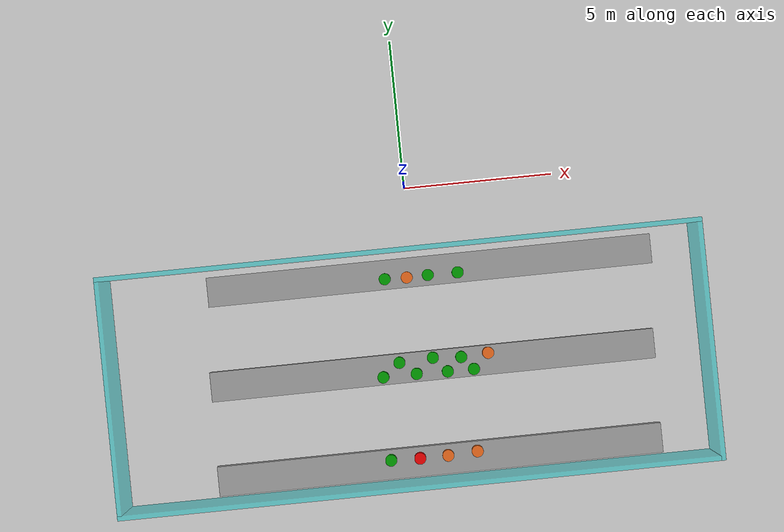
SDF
<sdf version="1.7">
 <world name="default">
  <model name="ground_plane">
   <static>1</static>
   <link name="link">
    <collision name="collision">
     <geometry><plane><normal>0 0 1</normal><size>100 100</size></plane></geometry>
     <surface>
      <contact><collide_bitmask>65535</collide_bitmask></contact>
      <friction><ode><mu>100</mu><mu2>50</mu2></ode></friction>
     </surface>
    </collision>
    <visual name="visual">
     <cast_shadows>0</cast_shadows>
     <geometry><plane><normal>0 0 1</normal><size>100 100</size></plane></geometry>
     <material>
      <script><uri>file://media/materials/scripts/gazebo.material</uri><name>Gazebo/Grey</name></script>
     </material>
    </visual>
   </link>
  </model>
  <model name="Test_Bench">
   <link name="link_1">
    <inertial>
     <mass>6.47546</mass>
     <inertia><ixx>0.639529</ixx><ixy>0</ixy><ixz>0</ixz><iyy>122.309</iyy><iyz>0</iyz><izz>122.749</izz></inertia>
    </inertial>
    <pose>-0 4e-06 0 0 -0 0</pose>
    <visual name="visual">
     <geometry><box><size>15.049 1 0.430283</size></box></geometry>
     <material>
      <lighting>1</lighting>
      <script><uri>file://media/materials/scripts/gazebo.material</uri><name>Gazebo/Grey</name></script>
      <shader type="pixel"/>
     </material>
    </visual>
    <collision name="collision">
     <geometry><box><size>15.049 1 0.430283</size></box></geometry>
     <surface>
      <friction>
       <ode><mu>1</mu><mu2>1</mu2><fdir1>0 0 0</fdir1><slip1>0</slip1><slip2>0</slip2></ode>
       <torsional>
        <coefficient>1</coefficient>
        <patch_radius>0</patch_radius>
        <surface_radius>0</surface_radius>
        <use_patch_radius>1</use_patch_radius>
        <ode><slip>0</slip></ode>
       </torsional>
      </friction>
      <bounce><restitution_coefficient>0</restitution_coefficient><threshold>1e+06</threshold></bounce>
      <contact>
       <collide_without_contact>0</collide_without_contact>
       <collide_without_contact_bitmask>1</collide_without_contact_bitmask>
       <collide_bitmask>1</collide_bitmask>
       <ode>
        <soft_cfm>0</soft_cfm>
        <soft_erp>0.2</soft_erp>
        <kp>1e+13</kp>
        <kd>1</kd>
        <max_vel>0.01</max_vel>
        <min_depth>0</min_depth>
       </ode>
       <bullet>
        <split_impulse>1</split_impulse>
        <split_impulse_penetration_threshold>-0.01</split_impulse_penetration_threshold>
        <soft_cfm>0</soft_cfm>
        <soft_erp>0.2</soft_erp>
        <kp>1e+13</kp>
        <kd>1</kd>
       </bullet>
      </contact>
     </surface>
    </collision>
   </link>
   <static>0</static>
   <pose>0.548935 -2.85971 0.205889 -0.000489 3.2e-05 1.1e-05</pose>
  </model>
  <model name="Test_Bench_clone">
   <link name="link_1">
    <inertial>
     <mass>6.47546</mass>
     <inertia><ixx>0.639529</ixx><ixy>0</ixy><ixz>0</ixz><iyy>122.309</iyy><iyz>0</iyz><izz>122.749</izz></inertia>
    </inertial>
    <pose>-0 4e-06 0 0 -0 0</pose>
    <visual name="visual">
     <geometry><box><size>15.049 1 0.430283</size></box></geometry>
     <material>
      <lighting>1</lighting>
      <script><uri>file://media/materials/scripts/gazebo.material</uri><name>Gazebo/Grey</name></script>
      <shader type="pixel"/>
     </material>
    </visual>
    <collision name="collision">
     <geometry><box><size>15.049 1 0.430283</size></box></geometry>
     <surface>
      <friction>
       <ode><mu>1</mu><mu2>1</mu2><fdir1>0 0 0</fdir1><slip1>0</slip1><slip2>0</slip2></ode>
       <torsional>
        <coefficient>1</coefficient>
        <patch_radius>0</patch_radius>
        <surface_radius>0</surface_radius>
        <use_patch_radius>1</use_patch_radius>
        <ode><slip>0</slip></ode>
       </torsional>
      </friction>
      <bounce><restitution_coefficient>0</restitution_coefficient><threshold>1e+06</threshold></bounce>
      <contact>
       <collide_without_contact>0</collide_without_contact>
       <collide_without_contact_bitmask>1</collide_without_contact_bitmask>
       <collide_bitmask>1</collide_bitmask>
       <ode>
        <soft_cfm>0</soft_cfm>
        <soft_erp>0.2</soft_erp>
        <kp>1e+13</kp>
        <kd>1</kd>
        <max_vel>0.01</max_vel>
        <min_depth>0</min_depth>
       </ode>
       <bullet>
        <split_impulse>1</split_impulse>
        <split_impulse_penetration_threshold>-0.01</split_impulse_penetration_threshold>
        <soft_cfm>0</soft_cfm>
        <soft_erp>0.2</soft_erp>
        <kp>1e+13</kp>
        <kd>1</kd>
       </bullet>
      </contact>
     </surface>
    </collision>
   </link>
   <static>0</static>
   <pose>0.345725 -6.0582 0.210803 6.6e-05 -8e-06 2e-06</pose>
  </model>
  <model name="Test_Bench_clone_0">
   <link name="link_1">
    <inertial>
     <mass>6.47546</mass>
     <inertia><ixx>0.639529</ixx><ixy>0</ixy><ixz>0</ixz><iyy>122.309</iyy><iyz>0</iyz><izz>122.749</izz></inertia>
    </inertial>
    <pose>-0 4e-06 0 0 -0 0</pose>
    <visual name="visual">
     <geometry><box><size>15.049 1 0.430283</size></box></geometry>
     <material>
      <lighting>1</lighting>
      <script><uri>file://media/materials/scripts/gazebo.material</uri><name>Gazebo/Grey</name></script>
      <shader type="pixel"/>
     </material>
    </visual>
    <collision name="collision">
     <geometry><box><size>15.049 1 0.430283</size></box></geometry>
     <surface>
      <friction>
       <ode><mu>1</mu><mu2>1</mu2><fdir1>0 0 0</fdir1><slip1>0</slip1><slip2>0</slip2></ode>
       <torsional>
        <coefficient>1</coefficient>
        <patch_radius>0</patch_radius>
        <surface_radius>0</surface_radius>
        <use_patch_radius>1</use_patch_radius>
        <ode><slip>0</slip></ode>
       </torsional>
      </friction>
      <bounce><restitution_coefficient>0</restitution_coefficient><threshold>1e+06</threshold></bounce>
      <contact>
       <collide_without_contact>0</collide_without_contact>
       <collide_without_contact_bitmask>1</collide_without_contact_bitmask>
       <collide_bitmask>1</collide_bitmask>
       <ode>
        <soft_cfm>0</soft_cfm>
        <soft_erp>0.2</soft_erp>
        <kp>1e+13</kp>
        <kd>1</kd>
        <max_vel>0.01</max_vel>
        <min_depth>0</min_depth>
       </ode>
       <bullet>
        <split_impulse>1</split_impulse>
        <split_impulse_penetration_threshold>-0.01</split_impulse_penetration_threshold>
        <soft_cfm>0</soft_cfm>
        <soft_erp>0.2</soft_erp>
        <kp>1e+13</kp>
        <kd>1</kd>
       </bullet>
      </contact>
     </surface>
    </collision>
   </link>
   <static>0</static>
   <pose>0.286602 -9.2541 0.215141 0 -0 0</pose>
  </model>
  <model name="Test_Building2">
   <link name="Wall_3">
    <pose>0 2.93093 0 0 -0 0</pose>
    <inertial>
     <mass>1</mass>
     <inertia><ixx>1</ixx><ixy>0</ixy><ixz>0</ixz><iyy>1</iyy><iyz>0</iyz><izz>1</izz></inertia>
    </inertial>
    <visual name="Wall_3_Visual">
     <pose>0 0 1.25 0 -0 0</pose>
     <geometry><box><size>20 0.15 2.5</size></box></geometry>
     <material>
      <script><uri>file://media/materials/scripts/gazebo.material</uri><name>Gazebo/Grey</name></script>
      <ambient>0 0.808 0.816 1</ambient>
      <shader type="pixel"><normal_map>__default__</normal_map></shader>
      <diffuse>0.7 0.7 0.7 1</diffuse>
      <specular>0.01 0.01 0.01 1</specular>
      <emissive>0 0 0 1</emissive>
     </material>
     <meta><layer>0</layer></meta>
     <transparency>0.5</transparency>
    </visual>
    <collision name="Wall_3_Collision">
     <pose>0 0 1.25 0 -0 0</pose>
     <geometry><box><size>20 0.15 2.5</size></box></geometry>
     <surface>
      <friction>
       <ode><mu>1</mu><mu2>1</mu2><fdir1>0 0 0</fdir1><slip1>0</slip1><slip2>0</slip2></ode>
       <torsional>
        <coefficient>1</coefficient>
        <patch_radius>0</patch_radius>
        <surface_radius>0</surface_radius>
        <use_patch_radius>1</use_patch_radius>
        <ode><slip>0</slip></ode>
       </torsional>
      </friction>
      <bounce><restitution_coefficient>0</restitution_coefficient><threshold>1e+06</threshold></bounce>
      <contact>
       <collide_without_contact>0</collide_without_contact>
       <collide_without_contact_bitmask>1</collide_without_contact_bitmask>
       <collide_bitmask>1</collide_bitmask>
       <ode>
        <soft_cfm>0</soft_cfm>
        <soft_erp>0.2</soft_erp>
        <kp>1e+13</kp>
        <kd>1</kd>
        <max_vel>0.01</max_vel>
        <min_depth>0</min_depth>
       </ode>
       <bullet>
        <split_impulse>1</split_impulse>
        <split_impulse_penetration_threshold>-0.01</split_impulse_penetration_threshold>
        <soft_cfm>0</soft_cfm>
        <soft_erp>0.2</soft_erp>
        <kp>1e+13</kp>
        <kd>1</kd>
       </bullet>
      </contact>
     </surface>
    </collision>
   </link>
   <link name="Wall_4">
    <pose>9.925 -0.994068 0 0 0 -1.5708</pose>
    <inertial>
     <mass>1</mass>
     <inertia><ixx>1</ixx><ixy>0</ixy><ixz>0</ixz><iyy>1</iyy><iyz>0</iyz><izz>1</izz></inertia>
    </inertial>
    <visual name="Wall_4_Visual">
     <pose>0 0 1.25 0 -0 0</pose>
     <geometry><box><size>8 0.15 2.5</size></box></geometry>
     <material>
      <script><uri>file://media/materials/scripts/gazebo.material</uri><name>Gazebo/Grey</name></script>
      <ambient>0 0.808 0.816 1</ambient>
      <shader type="pixel"><normal_map>__default__</normal_map></shader>
      <diffuse>0.7 0.7 0.7 1</diffuse>
      <specular>0.01 0.01 0.01 1</specular>
      <emissive>0 0 0 1</emissive>
     </material>
     <meta><layer>0</layer></meta>
     <transparency>0.5</transparency>
    </visual>
    <collision name="Wall_4_Collision">
     <pose>0 0 1.25 0 -0 0</pose>
     <geometry><box><size>8 0.15 2.5</size></box></geometry>
     <surface>
      <friction>
       <ode><mu>1</mu><mu2>1</mu2><fdir1>0 0 0</fdir1><slip1>0</slip1><slip2>0</slip2></ode>
       <torsional>
        <coefficient>1</coefficient>
        <patch_radius>0</patch_radius>
        <surface_radius>0</surface_radius>
        <use_patch_radius>1</use_patch_radius>
        <ode><slip>0</slip></ode>
       </torsional>
      </friction>
      <bounce><restitution_coefficient>0</restitution_coefficient><threshold>1e+06</threshold></bounce>
      <contact>
       <collide_without_contact>0</collide_without_contact>
       <collide_without_contact_bitmask>1</collide_without_contact_bitmask>
       <collide_bitmask>1</collide_bitmask>
       <ode>
        <soft_cfm>0</soft_cfm>
        <soft_erp>0.2</soft_erp>
        <kp>1e+13</kp>
        <kd>1</kd>
        <max_vel>0.01</max_vel>
        <min_depth>0</min_depth>
       </ode>
       <bullet>
        <split_impulse>1</split_impulse>
        <split_impulse_penetration_threshold>-0.01</split_impulse_penetration_threshold>
        <soft_cfm>0</soft_cfm>
        <soft_erp>0.2</soft_erp>
        <kp>1e+13</kp>
        <kd>1</kd>
       </bullet>
      </contact>
     </surface>
    </collision>
   </link>
   <link name="Wall_5">
    <pose>0 -4.91907 0 0 -0 3.14159</pose>
    <inertial>
     <mass>1</mass>
     <inertia><ixx>1</ixx><ixy>0</ixy><ixz>0</ixz><iyy>1</iyy><iyz>0</iyz><izz>1</izz></inertia>
    </inertial>
    <visual name="Wall_5_Visual">
     <pose>0 0 1.25 0 -0 0</pose>
     <geometry><box><size>20 0.15 2.5</size></box></geometry>
     <material>
      <script><uri>file://media/materials/scripts/gazebo.material</uri><name>Gazebo/Grey</name></script>
      <ambient>0 0.808 0.816 1</ambient>
      <shader type="pixel"><normal_map>__default__</normal_map></shader>
      <diffuse>0.7 0.7 0.7 1</diffuse>
      <specular>0.01 0.01 0.01 1</specular>
      <emissive>0 0 0 1</emissive>
     </material>
     <meta><layer>0</layer></meta>
     <transparency>0.5</transparency>
    </visual>
    <collision name="Wall_5_Collision">
     <pose>0 0 1.25 0 -0 0</pose>
     <geometry><box><size>20 0.15 2.5</size></box></geometry>
     <surface>
      <friction>
       <ode><mu>1</mu><mu2>1</mu2><fdir1>0 0 0</fdir1><slip1>0</slip1><slip2>0</slip2></ode>
       <torsional>
        <coefficient>1</coefficient>
        <patch_radius>0</patch_radius>
        <surface_radius>0</surface_radius>
        <use_patch_radius>1</use_patch_radius>
        <ode><slip>0</slip></ode>
       </torsional>
      </friction>
      <bounce><restitution_coefficient>0</restitution_coefficient><threshold>1e+06</threshold></bounce>
      <contact>
       <collide_without_contact>0</collide_without_contact>
       <collide_without_contact_bitmask>1</collide_without_contact_bitmask>
       <collide_bitmask>1</collide_bitmask>
       <ode>
        <soft_cfm>0</soft_cfm>
        <soft_erp>0.2</soft_erp>
        <kp>1e+13</kp>
        <kd>1</kd>
        <max_vel>0.01</max_vel>
        <min_depth>0</min_depth>
       </ode>
       <bullet>
        <split_impulse>1</split_impulse>
        <split_impulse_penetration_threshold>-0.01</split_impulse_penetration_threshold>
        <soft_cfm>0</soft_cfm>
        <soft_erp>0.2</soft_erp>
        <kp>1e+13</kp>
        <kd>1</kd>
       </bullet>
      </contact>
     </surface>
    </collision>
   </link>
   <link name="Wall_6">
    <pose>-9.925 -0.994068 0 0 -0 1.5708</pose>
    <inertial>
     <mass>1</mass>
     <inertia><ixx>1</ixx><ixy>0</ixy><ixz>0</ixz><iyy>1</iyy><iyz>0</iyz><izz>1</izz></inertia>
    </inertial>
    <visual name="Wall_6_Visual">
     <pose>0 0 1.25 0 -0 0</pose>
     <geometry><box><size>8 0.15 2.5</size></box></geometry>
     <material>
      <script><uri>file://media/materials/scripts/gazebo.material</uri><name>Gazebo/Grey</name></script>
      <ambient>0 0.808 0.816 1</ambient>
      <shader type="pixel"><normal_map>__default__</normal_map></shader>
      <diffuse>0.7 0.7 0.7 1</diffuse>
      <specular>0.01 0.01 0.01 1</specular>
      <emissive>0 0 0 1</emissive>
     </material>
     <meta><layer>0</layer></meta>
     <transparency>0.5</transparency>
    </visual>
    <collision name="Wall_6_Collision">
     <pose>0 0 1.25 0 -0 0</pose>
     <geometry><box><size>8 0.15 2.5</size></box></geometry>
     <surface>
      <friction>
       <ode><mu>1</mu><mu2>1</mu2><fdir1>0 0 0</fdir1><slip1>0</slip1><slip2>0</slip2></ode>
       <torsional>
        <coefficient>1</coefficient>
        <patch_radius>0</patch_radius>
        <surface_radius>0</surface_radius>
        <use_patch_radius>1</use_patch_radius>
        <ode><slip>0</slip></ode>
       </torsional>
      </friction>
      <bounce><restitution_coefficient>0</restitution_coefficient><threshold>1e+06</threshold></bounce>
      <contact>
       <collide_without_contact>0</collide_without_contact>
       <collide_without_contact_bitmask>1</collide_without_contact_bitmask>
       <collide_bitmask>1</collide_bitmask>
       <ode>
        <soft_cfm>0</soft_cfm>
        <soft_erp>0.2</soft_erp>
        <kp>1e+13</kp>
        <kd>1</kd>
        <max_vel>0.01</max_vel>
        <min_depth>0</min_depth>
       </ode>
       <bullet>
        <split_impulse>1</split_impulse>
        <split_impulse_penetration_threshold>-0.01</split_impulse_penetration_threshold>
        <soft_cfm>0</soft_cfm>
        <soft_erp>0.2</soft_erp>
        <kp>1e+13</kp>
        <kd>1</kd>
       </bullet>
      </contact>
     </surface>
    </collision>
   </link>
   <static>1</static>
   <pose>-0.420117 -4.99407 0 0 -0 0</pose>
  </model>
  <model name="Test_pot_green_clone_3">
   <link name="link_0">
    <inertial>
     <mass>0.044841</mass>
     <inertia>
      <ixx>0.00074807</ixx>
      <ixy>0</ixy>
      <ixz>0</ixz>
      <iyy>0.00074807</iyy>
      <iyz>0</iyz>
      <izz>0.00086495</izz>
     </inertia>
    </inertial>
    <pose>3e-06 1e-06 0 0 -0 0</pose>
    <visual name="visual">
     <geometry><cylinder><radius>0.196415</radius><length>0.290612</length></cylinder></geometry>
     <material>
      <lighting>1</lighting>
      <script><uri>file://media/materials/scripts/gazebo.material</uri><name>Gazebo/Grey</name></script>
      <shader type="pixel"><normal_map>__default__</normal_map></shader>
      <diffuse>0 0.6 0 0</diffuse>
      <ambient>0.3 0.3 0.3 1</ambient>
      <specular>0.01 0.01 0.01 1</specular>
      <emissive>0 0 0 1</emissive>
     </material>
    </visual>
    <collision name="collision">
     <geometry><cylinder><radius>0.196415</radius><length>0.290612</length></cylinder></geometry>
     <surface>
      <friction>
       <ode><mu>1</mu><mu2>1</mu2><fdir1>0 0 0</fdir1><slip1>0</slip1><slip2>0</slip2></ode>
       <torsional>
        <coefficient>1</coefficient>
        <patch_radius>0</patch_radius>
        <surface_radius>0</surface_radius>
        <use_patch_radius>1</use_patch_radius>
        <ode><slip>0</slip></ode>
       </torsional>
      </friction>
      <bounce><restitution_coefficient>0</restitution_coefficient><threshold>1e+06</threshold></bounce>
      <contact>
       <collide_without_contact>0</collide_without_contact>
       <collide_without_contact_bitmask>1</collide_without_contact_bitmask>
       <collide_bitmask>1</collide_bitmask>
       <ode>
        <soft_cfm>0</soft_cfm>
        <soft_erp>0.2</soft_erp>
        <kp>1e+13</kp>
        <kd>1</kd>
        <max_vel>0.01</max_vel>
        <min_depth>0</min_depth>
       </ode>
       <bullet>
        <split_impulse>1</split_impulse>
        <split_impulse_penetration_threshold>-0.01</split_impulse_penetration_threshold>
        <soft_cfm>0</soft_cfm>
        <soft_erp>0.2</soft_erp>
        <kp>1e+13</kp>
        <kd>1</kd>
       </bullet>
      </contact>
     </surface>
    </collision>
   </link>
   <static>0</static>
   <pose>-0.965564 -3.00465 0.575588 1e-06 6e-06 -0.000489</pose>
  </model>
  <model name="Test_pot_green_clone_12">
   <link name="link_0">
    <inertial>
     <mass>0.044841</mass>
     <inertia>
      <ixx>0.00074807</ixx>
      <ixy>0</ixy>
      <ixz>0</ixz>
      <iyy>0.00074807</iyy>
      <iyz>0</iyz>
      <izz>0.00086495</izz>
     </inertia>
    </inertial>
    <pose>3e-06 1e-06 0 0 -0 0</pose>
    <visual name="visual">
     <geometry><cylinder><radius>0.196415</radius><length>0.290612</length></cylinder></geometry>
     <material>
      <lighting>1</lighting>
      <script><uri>file://media/materials/scripts/gazebo.material</uri><name>Gazebo/Grey</name></script>
      <shader type="pixel"><normal_map>__default__</normal_map></shader>
      <diffuse>0 0.6 0 0</diffuse>
      <ambient>0.3 0.3 0.3 1</ambient>
      <specular>0.01 0.01 0.01 1</specular>
      <emissive>0 0 0 1</emissive>
     </material>
    </visual>
    <collision name="collision">
     <geometry><cylinder><radius>0.196415</radius><length>0.290612</length></cylinder></geometry>
     <surface>
      <friction>
       <ode><mu>1</mu><mu2>1</mu2><fdir1>0 0 0</fdir1><slip1>0</slip1><slip2>0</slip2></ode>
       <torsional>
        <coefficient>1</coefficient>
        <patch_radius>0</patch_radius>
        <surface_radius>0</surface_radius>
        <use_patch_radius>1</use_patch_radius>
        <ode><slip>0</slip></ode>
       </torsional>
      </friction>
      <bounce><restitution_coefficient>0</restitution_coefficient><threshold>1e+06</threshold></bounce>
      <contact>
       <collide_without_contact>0</collide_without_contact>
       <collide_without_contact_bitmask>1</collide_without_contact_bitmask>
       <collide_bitmask>1</collide_bitmask>
       <ode>
        <soft_cfm>0</soft_cfm>
        <soft_erp>0.2</soft_erp>
        <kp>1e+13</kp>
        <kd>1</kd>
        <max_vel>0.01</max_vel>
        <min_depth>0</min_depth>
       </ode>
       <bullet>
        <split_impulse>1</split_impulse>
        <split_impulse_penetration_threshold>-0.01</split_impulse_penetration_threshold>
        <soft_cfm>0</soft_cfm>
        <soft_erp>0.2</soft_erp>
        <kp>1e+13</kp>
        <kd>1</kd>
       </bullet>
      </contact>
     </surface>
    </collision>
   </link>
   <static>0</static>
   <pose>-1.33861 -6.28993 0.575588 1e-06 6e-06 -0.000489</pose>
  </model>
  <model name="Test_pot_green_clone_14">
   <link name="link_0">
    <inertial>
     <mass>0.044841</mass>
     <inertia>
      <ixx>0.00074807</ixx>
      <ixy>0</ixy>
      <ixz>0</ixz>
      <iyy>0.00074807</iyy>
      <iyz>0</iyz>
      <izz>0.00086495</izz>
     </inertia>
    </inertial>
    <pose>3e-06 1e-06 0 0 -0 0</pose>
    <visual name="visual">
     <geometry><cylinder><radius>0.196415</radius><length>0.290612</length></cylinder></geometry>
     <material>
      <lighting>1</lighting>
      <script><uri>file://media/materials/scripts/gazebo.material</uri><name>Gazebo/Grey</name></script>
      <shader type="pixel"><normal_map>__default__</normal_map></shader>
      <diffuse>0 0.6 0 0</diffuse>
      <ambient>0.3 0.3 0.3 1</ambient>
      <specular>0.01 0.01 0.01 1</specular>
      <emissive>0 0 0 1</emissive>
     </material>
    </visual>
    <collision name="collision">
     <geometry><cylinder><radius>0.196415</radius><length>0.290612</length></cylinder></geometry>
     <surface>
      <friction>
       <ode><mu>1</mu><mu2>1</mu2><fdir1>0 0 0</fdir1><slip1>0</slip1><slip2>0</slip2></ode>
       <torsional>
        <coefficient>1</coefficient>
        <patch_radius>0</patch_radius>
        <surface_radius>0</surface_radius>
        <use_patch_radius>1</use_patch_radius>
        <ode><slip>0</slip></ode>
       </torsional>
      </friction>
      <bounce><restitution_coefficient>0</restitution_coefficient><threshold>1e+06</threshold></bounce>
      <contact>
       <collide_without_contact>0</collide_without_contact>
       <collide_without_contact_bitmask>1</collide_without_contact_bitmask>
       <collide_bitmask>1</collide_bitmask>
       <ode>
        <soft_cfm>0</soft_cfm>
        <soft_erp>0.2</soft_erp>
        <kp>1e+13</kp>
        <kd>1</kd>
        <max_vel>0.01</max_vel>
        <min_depth>0</min_depth>
       </ode>
       <bullet>
        <split_impulse>1</split_impulse>
        <split_impulse_penetration_threshold>-0.01</split_impulse_penetration_threshold>
        <soft_cfm>0</soft_cfm>
        <soft_erp>0.2</soft_erp>
        <kp>1e+13</kp>
        <kd>1</kd>
       </bullet>
      </contact>
     </surface>
    </collision>
   </link>
   <static>0</static>
   <pose>-0.210467 -6.28115 0.575588 1e-06 6e-06 -0.000489</pose>
  </model>
  <model name="Test_pot_green_clone_15">
   <link name="link_0">
    <inertial>
     <mass>0.044841</mass>
     <inertia>
      <ixx>0.00074807</ixx>
      <ixy>0</ixy>
      <ixz>0</ixz>
      <iyy>0.00074807</iyy>
      <iyz>0</iyz>
      <izz>0.00086495</izz>
     </inertia>
    </inertial>
    <pose>3e-06 1e-06 0 0 -0 0</pose>
    <visual name="visual">
     <geometry><cylinder><radius>0.196415</radius><length>0.290612</length></cylinder></geometry>
     <material>
      <lighting>1</lighting>
      <script><uri>file://media/materials/scripts/gazebo.material</uri><name>Gazebo/Grey</name></script>
      <shader type="pixel"><normal_map>__default__</normal_map></shader>
      <diffuse>0 0.6 0 0</diffuse>
      <ambient>0.3 0.3 0.3 1</ambient>
      <specular>0.01 0.01 0.01 1</specular>
      <emissive>0 0 0 1</emissive>
     </material>
    </visual>
    <collision name="collision">
     <geometry><cylinder><radius>0.196415</radius><length>0.290612</length></cylinder></geometry>
     <surface>
      <friction>
       <ode><mu>1</mu><mu2>1</mu2><fdir1>0 0 0</fdir1><slip1>0</slip1><slip2>0</slip2></ode>
       <torsional>
        <coefficient>1</coefficient>
        <patch_radius>0</patch_radius>
        <surface_radius>0</surface_radius>
        <use_patch_radius>1</use_patch_radius>
        <ode><slip>0</slip></ode>
       </torsional>
      </friction>
      <bounce><restitution_coefficient>0</restitution_coefficient><threshold>1e+06</threshold></bounce>
      <contact>
       <collide_without_contact>0</collide_without_contact>
       <collide_without_contact_bitmask>1</collide_without_contact_bitmask>
       <collide_bitmask>1</collide_bitmask>
       <ode>
        <soft_cfm>0</soft_cfm>
        <soft_erp>0.2</soft_erp>
        <kp>1e+13</kp>
        <kd>1</kd>
        <max_vel>0.01</max_vel>
        <min_depth>0</min_depth>
       </ode>
       <bullet>
        <split_impulse>1</split_impulse>
        <split_impulse_penetration_threshold>-0.01</split_impulse_penetration_threshold>
        <soft_cfm>0</soft_cfm>
        <soft_erp>0.2</soft_erp>
        <kp>1e+13</kp>
        <kd>1</kd>
       </bullet>
      </contact>
     </surface>
    </collision>
   </link>
   <static>0</static>
   <pose>-0.752794 -5.8525 0.575588 1e-06 6e-06 -0.000489</pose>
  </model>
  <model name="Test_pot_green_clone_16">
   <link name="link_0">
    <inertial>
     <mass>0.044841</mass>
     <inertia>
      <ixx>0.00074807</ixx>
      <ixy>0</ixy>
      <ixz>0</ixz>
      <iyy>0.00074807</iyy>
      <iyz>0</iyz>
      <izz>0.00086495</izz>
     </inertia>
    </inertial>
    <pose>3e-06 1e-06 0 0 -0 0</pose>
    <visual name="visual">
     <geometry><cylinder><radius>0.196415</radius><length>0.290612</length></cylinder></geometry>
     <material>
      <lighting>1</lighting>
      <script><uri>file://media/materials/scripts/gazebo.material</uri><name>Gazebo/Grey</name></script>
      <shader type="pixel"><normal_map>__default__</normal_map></shader>
      <diffuse>0 0.6 0 0</diffuse>
      <ambient>0.3 0.3 0.3 1</ambient>
      <specular>0.01 0.01 0.01 1</specular>
      <emissive>0 0 0 1</emissive>
     </material>
    </visual>
    <collision name="collision">
     <geometry><cylinder><radius>0.196415</radius><length>0.290612</length></cylinder></geometry>
     <surface>
      <friction>
       <ode><mu>1</mu><mu2>1</mu2><fdir1>0 0 0</fdir1><slip1>0</slip1><slip2>0</slip2></ode>
       <torsional>
        <coefficient>1</coefficient>
        <patch_radius>0</patch_radius>
        <surface_radius>0</surface_radius>
        <use_patch_radius>1</use_patch_radius>
        <ode><slip>0</slip></ode>
       </torsional>
      </friction>
      <bounce><restitution_coefficient>0</restitution_coefficient><threshold>1e+06</threshold></bounce>
      <contact>
       <collide_without_contact>0</collide_without_contact>
       <collide_without_contact_bitmask>1</collide_without_contact_bitmask>
       <collide_bitmask>1</collide_bitmask>
       <ode>
        <soft_cfm>0</soft_cfm>
        <soft_erp>0.2</soft_erp>
        <kp>1e+13</kp>
        <kd>1</kd>
        <max_vel>0.01</max_vel>
        <min_depth>0</min_depth>
       </ode>
       <bullet>
        <split_impulse>1</split_impulse>
        <split_impulse_penetration_threshold>-0.01</split_impulse_penetration_threshold>
        <soft_cfm>0</soft_cfm>
        <soft_erp>0.2</soft_erp>
        <kp>1e+13</kp>
        <kd>1</kd>
       </bullet>
      </contact>
     </surface>
    </collision>
   </link>
   <static>0</static>
   <pose>0.837026 -6.30449 0.575588 1e-06 6e-06 -0.000489</pose>
  </model>
  <model name="Test_pot_green_clone_17">
   <link name="link_0">
    <inertial>
     <mass>0.044841</mass>
     <inertia>
      <ixx>0.00074807</ixx>
      <ixy>0</ixy>
      <ixz>0</ixz>
      <iyy>0.00074807</iyy>
      <iyz>0</iyz>
      <izz>0.00086495</izz>
     </inertia>
    </inertial>
    <pose>3e-06 1e-06 0 0 -0 0</pose>
    <visual name="visual">
     <geometry><cylinder><radius>0.196415</radius><length>0.290612</length></cylinder></geometry>
     <material>
      <lighting>1</lighting>
      <script><uri>file://media/materials/scripts/gazebo.material</uri><name>Gazebo/Grey</name></script>
      <shader type="pixel"><normal_map>__default__</normal_map></shader>
      <diffuse>0 0.6 0 0</diffuse>
      <ambient>0.3 0.3 0.3 1</ambient>
      <specular>0.01 0.01 0.01 1</specular>
      <emissive>0 0 0 1</emissive>
     </material>
    </visual>
    <collision name="collision">
     <geometry><cylinder><radius>0.196415</radius><length>0.290612</length></cylinder></geometry>
     <surface>
      <friction>
       <ode><mu>1</mu><mu2>1</mu2><fdir1>0 0 0</fdir1><slip1>0</slip1><slip2>0</slip2></ode>
       <torsional>
        <coefficient>1</coefficient>
        <patch_radius>0</patch_radius>
        <surface_radius>0</surface_radius>
        <use_patch_radius>1</use_patch_radius>
        <ode><slip>0</slip></ode>
       </torsional>
      </friction>
      <bounce><restitution_coefficient>0</restitution_coefficient><threshold>1e+06</threshold></bounce>
      <contact>
       <collide_without_contact>0</collide_without_contact>
       <collide_without_contact_bitmask>1</collide_without_contact_bitmask>
       <collide_bitmask>1</collide_bitmask>
       <ode>
        <soft_cfm>0</soft_cfm>
        <soft_erp>0.2</soft_erp>
        <kp>1e+13</kp>
        <kd>1</kd>
        <max_vel>0.01</max_vel>
        <min_depth>0</min_depth>
       </ode>
       <bullet>
        <split_impulse>1</split_impulse>
        <split_impulse_penetration_threshold>-0.01</split_impulse_penetration_threshold>
        <soft_cfm>0</soft_cfm>
        <soft_erp>0.2</soft_erp>
        <kp>1e+13</kp>
        <kd>1</kd>
       </bullet>
      </contact>
     </surface>
    </collision>
   </link>
   <static>0</static>
   <pose>0.381946 -5.79498 0.575588 1e-06 6e-06 -0.000489</pose>
  </model>
  <model name="Test_pot_green_clone_18">
   <link name="link_0">
    <inertial>
     <mass>0.044841</mass>
     <inertia>
      <ixx>0.00074807</ixx>
      <ixy>0</ixy>
      <ixz>0</ixz>
      <iyy>0.00074807</iyy>
      <iyz>0</iyz>
      <izz>0.00086495</izz>
     </inertia>
    </inertial>
    <pose>3e-06 1e-06 0 0 -0 0</pose>
    <visual name="visual">
     <geometry><cylinder><radius>0.196415</radius><length>0.290612</length></cylinder></geometry>
     <material>
      <lighting>1</lighting>
      <script><uri>file://media/materials/scripts/gazebo.material</uri><name>Gazebo/Grey</name></script>
      <shader type="pixel"><normal_map>__default__</normal_map></shader>
      <diffuse>0 0.6 0 0</diffuse>
      <ambient>0.3 0.3 0.3 1</ambient>
      <specular>0.01 0.01 0.01 1</specular>
      <emissive>0 0 0 1</emissive>
     </material>
    </visual>
    <collision name="collision">
     <geometry><cylinder><radius>0.196415</radius><length>0.290612</length></cylinder></geometry>
     <surface>
      <friction>
       <ode><mu>1</mu><mu2>1</mu2><fdir1>0 0 0</fdir1><slip1>0</slip1><slip2>0</slip2></ode>
       <torsional>
        <coefficient>1</coefficient>
        <patch_radius>0</patch_radius>
        <surface_radius>0</surface_radius>
        <use_patch_radius>1</use_patch_radius>
        <ode><slip>0</slip></ode>
       </torsional>
      </friction>
      <bounce><restitution_coefficient>0</restitution_coefficient><threshold>1e+06</threshold></bounce>
      <contact>
       <collide_without_contact>0</collide_without_contact>
       <collide_without_contact_bitmask>1</collide_without_contact_bitmask>
       <collide_bitmask>1</collide_bitmask>
       <ode>
        <soft_cfm>0</soft_cfm>
        <soft_erp>0.2</soft_erp>
        <kp>1e+13</kp>
        <kd>1</kd>
        <max_vel>0.01</max_vel>
        <min_depth>0</min_depth>
       </ode>
       <bullet>
        <split_impulse>1</split_impulse>
        <split_impulse_penetration_threshold>-0.01</split_impulse_penetration_threshold>
        <soft_cfm>0</soft_cfm>
        <soft_erp>0.2</soft_erp>
        <kp>1e+13</kp>
        <kd>1</kd>
       </bullet>
      </contact>
     </surface>
    </collision>
   </link>
   <static>0</static>
   <pose>1.72325 -6.31049 0.575588 1e-06 6e-06 -0.000489</pose>
  </model>
  <model name="Test_pot_green_clone_19">
   <link name="link_0">
    <inertial>
     <mass>0.044841</mass>
     <inertia>
      <ixx>0.00074807</ixx>
      <ixy>0</ixy>
      <ixz>0</ixz>
      <iyy>0.00074807</iyy>
      <iyz>0</iyz>
      <izz>0.00086495</izz>
     </inertia>
    </inertial>
    <pose>3e-06 1e-06 0 0 -0 0</pose>
    <visual name="visual">
     <geometry><cylinder><radius>0.196415</radius><length>0.290612</length></cylinder></geometry>
     <material>
      <lighting>1</lighting>
      <script><uri>file://media/materials/scripts/gazebo.material</uri><name>Gazebo/Grey</name></script>
      <shader type="pixel"><normal_map>__default__</normal_map></shader>
      <diffuse>0 0.6 0 0</diffuse>
      <ambient>0.3 0.3 0.3 1</ambient>
      <specular>0.01 0.01 0.01 1</specular>
      <emissive>0 0 0 1</emissive>
     </material>
    </visual>
    <collision name="collision">
     <geometry><cylinder><radius>0.196415</radius><length>0.290612</length></cylinder></geometry>
     <surface>
      <friction>
       <ode><mu>1</mu><mu2>1</mu2><fdir1>0 0 0</fdir1><slip1>0</slip1><slip2>0</slip2></ode>
       <torsional>
        <coefficient>1</coefficient>
        <patch_radius>0</patch_radius>
        <surface_radius>0</surface_radius>
        <use_patch_radius>1</use_patch_radius>
        <ode><slip>0</slip></ode>
       </torsional>
      </friction>
      <bounce><restitution_coefficient>0</restitution_coefficient><threshold>1e+06</threshold></bounce>
      <contact>
       <collide_without_contact>0</collide_without_contact>
       <collide_without_contact_bitmask>1</collide_without_contact_bitmask>
       <collide_bitmask>1</collide_bitmask>
       <ode>
        <soft_cfm>0</soft_cfm>
        <soft_erp>0.2</soft_erp>
        <kp>1e+13</kp>
        <kd>1</kd>
        <max_vel>0.01</max_vel>
        <min_depth>0</min_depth>
       </ode>
       <bullet>
        <split_impulse>1</split_impulse>
        <split_impulse_penetration_threshold>-0.01</split_impulse_penetration_threshold>
        <soft_cfm>0</soft_cfm>
        <soft_erp>0.2</soft_erp>
        <kp>1e+13</kp>
        <kd>1</kd>
       </bullet>
      </contact>
     </surface>
    </collision>
   </link>
   <static>0</static>
   <pose>1.33497 -5.86655 0.575588 1e-06 6e-06 -0.000489</pose>
  </model>
  <model name="Test_pot_orange_clone_2">
   <link name="link_0">
    <inertial>
     <mass>0.044841</mass>
     <inertia>
      <ixx>0.00074807</ixx>
      <ixy>0</ixy>
      <ixz>0</ixz>
      <iyy>0.00074807</iyy>
      <iyz>0</iyz>
      <izz>0.00086495</izz>
     </inertia>
    </inertial>
    <pose>3e-06 1e-06 -0 0 -0 0</pose>
    <visual name="visual">
     <geometry><cylinder><radius>0.196415</radius><length>0.290612</length></cylinder></geometry>
     <material>
      <lighting>1</lighting>
      <script><uri>file://media/materials/scripts/gazebo.material</uri><name>Gazebo/Grey</name></script>
      <shader type="pixel"><normal_map>__default__</normal_map></shader>
      <ambient>0.3 0.3 0.3 1</ambient>
      <diffuse>0.9 0.4 0.1 1</diffuse>
      <specular>0.01 0.01 0.01 1</specular>
      <emissive>0 0 0 1</emissive>
     </material>
    </visual>
    <collision name="collision">
     <geometry><cylinder><radius>0.196415</radius><length>0.290612</length></cylinder></geometry>
     <surface>
      <friction>
       <ode><mu>1</mu><mu2>1</mu2><fdir1>0 0 0</fdir1><slip1>0</slip1><slip2>0</slip2></ode>
       <torsional>
        <coefficient>1</coefficient>
        <patch_radius>0</patch_radius>
        <surface_radius>0</surface_radius>
        <use_patch_radius>1</use_patch_radius>
        <ode><slip>0</slip></ode>
       </torsional>
      </friction>
      <bounce><restitution_coefficient>0</restitution_coefficient><threshold>1e+06</threshold></bounce>
      <contact>
       <collide_without_contact>0</collide_without_contact>
       <collide_without_contact_bitmask>1</collide_without_contact_bitmask>
       <collide_bitmask>1</collide_bitmask>
       <ode>
        <soft_cfm>0</soft_cfm>
        <soft_erp>0.2</soft_erp>
        <kp>1e+13</kp>
        <kd>1</kd>
        <max_vel>0.01</max_vel>
        <min_depth>0</min_depth>
       </ode>
       <bullet>
        <split_impulse>1</split_impulse>
        <split_impulse_penetration_threshold>-0.01</split_impulse_penetration_threshold>
        <soft_cfm>0</soft_cfm>
        <soft_erp>0.2</soft_erp>
        <kp>1e+13</kp>
        <kd>1</kd>
       </bullet>
      </contact>
     </surface>
    </collision>
   </link>
   <static>0</static>
   <pose>0.574035 -9.12126 0.575586 3.8e-05 1e-06 -0.000459</pose>
  </model>
  <model name="Test_pot_orange_clone_3">
   <link name="link_0">
    <inertial>
     <mass>0.044841</mass>
     <inertia>
      <ixx>0.00074807</ixx>
      <ixy>0</ixy>
      <ixz>0</ixz>
      <iyy>0.00074807</iyy>
      <iyz>0</iyz>
      <izz>0.00086495</izz>
     </inertia>
    </inertial>
    <pose>3e-06 1e-06 -0 0 -0 0</pose>
    <visual name="visual">
     <geometry><cylinder><radius>0.196415</radius><length>0.290612</length></cylinder></geometry>
     <material>
      <lighting>1</lighting>
      <script><uri>file://media/materials/scripts/gazebo.material</uri><name>Gazebo/Grey</name></script>
      <shader type="pixel"><normal_map>__default__</normal_map></shader>
      <ambient>0.3 0.3 0.3 1</ambient>
      <diffuse>0.9 0.4 0.1 1</diffuse>
      <specular>0.01 0.01 0.01 1</specular>
      <emissive>0 0 0 1</emissive>
     </material>
    </visual>
    <collision name="collision">
     <geometry><cylinder><radius>0.196415</radius><length>0.290612</length></cylinder></geometry>
     <surface>
      <friction>
       <ode><mu>1</mu><mu2>1</mu2><fdir1>0 0 0</fdir1><slip1>0</slip1><slip2>0</slip2></ode>
       <torsional>
        <coefficient>1</coefficient>
        <patch_radius>0</patch_radius>
        <surface_radius>0</surface_radius>
        <use_patch_radius>1</use_patch_radius>
        <ode><slip>0</slip></ode>
       </torsional>
      </friction>
      <bounce><restitution_coefficient>0</restitution_coefficient><threshold>1e+06</threshold></bounce>
      <contact>
       <collide_without_contact>0</collide_without_contact>
       <collide_without_contact_bitmask>1</collide_without_contact_bitmask>
       <collide_bitmask>1</collide_bitmask>
       <ode>
        <soft_cfm>0</soft_cfm>
        <soft_erp>0.2</soft_erp>
        <kp>1e+13</kp>
        <kd>1</kd>
        <max_vel>0.01</max_vel>
        <min_depth>0</min_depth>
       </ode>
       <bullet>
        <split_impulse>1</split_impulse>
        <split_impulse_penetration_threshold>-0.01</split_impulse_penetration_threshold>
        <soft_cfm>0</soft_cfm>
        <soft_erp>0.2</soft_erp>
        <kp>1e+13</kp>
        <kd>1</kd>
       </bullet>
      </contact>
     </surface>
    </collision>
   </link>
   <static>0</static>
   <pose>-0.223904 -3.02269 0.575586 3.8e-05 1e-06 -0.000459</pose>
  </model>
  <model name="Test_pot_orange_clone_5">
   <link name="link_0">
    <inertial>
     <mass>0.044841</mass>
     <inertia>
      <ixx>0.00074807</ixx>
      <ixy>0</ixy>
      <ixz>0</ixz>
      <iyy>0.00074807</iyy>
      <iyz>0</iyz>
      <izz>0.00086495</izz>
     </inertia>
    </inertial>
    <pose>3e-06 1e-06 -0 0 -0 0</pose>
    <visual name="visual">
     <geometry><cylinder><radius>0.196415</radius><length>0.290612</length></cylinder></geometry>
     <material>
      <lighting>1</lighting>
      <script><uri>file://media/materials/scripts/gazebo.material</uri><name>Gazebo/Grey</name></script>
      <shader type="pixel"><normal_map>__default__</normal_map></shader>
      <ambient>0.3 0.3 0.3 1</ambient>
      <diffuse>0.9 0.4 0.1 1</diffuse>
      <specular>0.01 0.01 0.01 1</specular>
      <emissive>0 0 0 1</emissive>
     </material>
    </visual>
    <collision name="collision">
     <geometry><cylinder><radius>0.196415</radius><length>0.290612</length></cylinder></geometry>
     <surface>
      <friction>
       <ode><mu>1</mu><mu2>1</mu2><fdir1>0 0 0</fdir1><slip1>0</slip1><slip2>0</slip2></ode>
       <torsional>
        <coefficient>1</coefficient>
        <patch_radius>0</patch_radius>
        <surface_radius>0</surface_radius>
        <use_patch_radius>1</use_patch_radius>
        <ode><slip>0</slip></ode>
       </torsional>
      </friction>
      <bounce><restitution_coefficient>0</restitution_coefficient><threshold>1e+06</threshold></bounce>
      <contact>
       <collide_without_contact>0</collide_without_contact>
       <collide_without_contact_bitmask>1</collide_without_contact_bitmask>
       <collide_bitmask>1</collide_bitmask>
       <ode>
        <soft_cfm>0</soft_cfm>
        <soft_erp>0.2</soft_erp>
        <kp>1e+13</kp>
        <kd>1</kd>
        <max_vel>0.01</max_vel>
        <min_depth>0</min_depth>
       </ode>
       <bullet>
        <split_impulse>1</split_impulse>
        <split_impulse_penetration_threshold>-0.01</split_impulse_penetration_threshold>
        <soft_cfm>0</soft_cfm>
        <soft_erp>0.2</soft_erp>
        <kp>1e+13</kp>
        <kd>1</kd>
       </bullet>
      </contact>
     </surface>
    </collision>
   </link>
   <static>0</static>
   <pose>1.56726 -9.07426 0.575586 3.8e-05 1e-06 -0.000459</pose>
  </model>
  <model name="Test_pot_orange_clone_8">
   <link name="link_0">
    <inertial>
     <mass>0.044841</mass>
     <inertia>
      <ixx>0.00074807</ixx>
      <ixy>0</ixy>
      <ixz>0</ixz>
      <iyy>0.00074807</iyy>
      <iyz>0</iyz>
      <izz>0.00086495</izz>
     </inertia>
    </inertial>
    <pose>3e-06 1e-06 -0 0 -0 0</pose>
    <visual name="visual">
     <geometry><cylinder><radius>0.196415</radius><length>0.290612</length></cylinder></geometry>
     <material>
      <lighting>1</lighting>
      <script><uri>file://media/materials/scripts/gazebo.material</uri><name>Gazebo/Grey</name></script>
      <shader type="pixel"><normal_map>__default__</normal_map></shader>
      <ambient>0.3 0.3 0.3 1</ambient>
      <diffuse>0.9 0.4 0.1 1</diffuse>
      <specular>0.01 0.01 0.01 1</specular>
      <emissive>0 0 0 1</emissive>
     </material>
    </visual>
    <collision name="collision">
     <geometry><cylinder><radius>0.196415</radius><length>0.290612</length></cylinder></geometry>
     <surface>
      <friction>
       <ode><mu>1</mu><mu2>1</mu2><fdir1>0 0 0</fdir1><slip1>0</slip1><slip2>0</slip2></ode>
       <torsional>
        <coefficient>1</coefficient>
        <patch_radius>0</patch_radius>
        <surface_radius>0</surface_radius>
        <use_patch_radius>1</use_patch_radius>
        <ode><slip>0</slip></ode>
       </torsional>
      </friction>
      <bounce><restitution_coefficient>0</restitution_coefficient><threshold>1e+06</threshold></bounce>
      <contact>
       <collide_without_contact>0</collide_without_contact>
       <collide_without_contact_bitmask>1</collide_without_contact_bitmask>
       <collide_bitmask>1</collide_bitmask>
       <ode>
        <soft_cfm>0</soft_cfm>
        <soft_erp>0.2</soft_erp>
        <kp>1e+13</kp>
        <kd>1</kd>
        <max_vel>0.01</max_vel>
        <min_depth>0</min_depth>
       </ode>
       <bullet>
        <split_impulse>1</split_impulse>
        <split_impulse_penetration_threshold>-0.01</split_impulse_penetration_threshold>
        <soft_cfm>0</soft_cfm>
        <soft_erp>0.2</soft_erp>
        <kp>1e+13</kp>
        <kd>1</kd>
       </bullet>
      </contact>
     </surface>
    </collision>
   </link>
   <static>0</static>
   <pose>2.24882 -5.81494 0.575586 3.8e-05 1e-06 -0.000459</pose>
  </model>
  <model name="Test_pot_green_clone_24">
   <link name="link_0">
    <inertial>
     <mass>0.044841</mass>
     <inertia>
      <ixx>0.00074807</ixx>
      <ixy>0</ixy>
      <ixz>0</ixz>
      <iyy>0.00074807</iyy>
      <iyz>0</iyz>
      <izz>0.00086495</izz>
     </inertia>
    </inertial>
    <pose>3e-06 1e-06 0 0 -0 0</pose>
    <visual name="visual">
     <geometry><cylinder><radius>0.196415</radius><length>0.290612</length></cylinder></geometry>
     <material>
      <lighting>1</lighting>
      <script><uri>file://media/materials/scripts/gazebo.material</uri><name>Gazebo/Grey</name></script>
      <shader type="pixel"><normal_map>__default__</normal_map></shader>
      <diffuse>0 0.6 0 0</diffuse>
      <ambient>0.3 0.3 0.3 1</ambient>
      <specular>0.01 0.01 0.01 1</specular>
      <emissive>0 0 0 1</emissive>
     </material>
    </visual>
    <collision name="collision">
     <geometry><cylinder><radius>0.196415</radius><length>0.290612</length></cylinder></geometry>
     <surface>
      <friction>
       <ode><mu>1</mu><mu2>1</mu2><fdir1>0 0 0</fdir1><slip1>0</slip1><slip2>0</slip2></ode>
       <torsional>
        <coefficient>1</coefficient>
        <patch_radius>0</patch_radius>
        <surface_radius>0</surface_radius>
        <use_patch_radius>1</use_patch_radius>
        <ode><slip>0</slip></ode>
       </torsional>
      </friction>
      <bounce><restitution_coefficient>0</restitution_coefficient><threshold>1e+06</threshold></bounce>
      <contact>
       <collide_without_contact>0</collide_without_contact>
       <collide_without_contact_bitmask>1</collide_without_contact_bitmask>
       <collide_bitmask>1</collide_bitmask>
       <ode>
        <soft_cfm>0</soft_cfm>
        <soft_erp>0.2</soft_erp>
        <kp>1e+13</kp>
        <kd>1</kd>
        <max_vel>0.01</max_vel>
        <min_depth>0</min_depth>
       </ode>
       <bullet>
        <split_impulse>1</split_impulse>
        <split_impulse_penetration_threshold>-0.01</split_impulse_penetration_threshold>
        <soft_cfm>0</soft_cfm>
        <soft_erp>0.2</soft_erp>
        <kp>1e+13</kp>
        <kd>1</kd>
       </bullet>
      </contact>
     </surface>
    </collision>
   </link>
   <static>0</static>
   <pose>0.491417 -3.00818 0.575588 1e-06 6e-06 -0.000489</pose>
  </model>
  <model name="Test_pot_green_clone_25">
   <link name="link_0">
    <inertial>
     <mass>0.044841</mass>
     <inertia>
      <ixx>0.00074807</ixx>
      <ixy>0</ixy>
      <ixz>0</ixz>
      <iyy>0.00074807</iyy>
      <iyz>0</iyz>
      <izz>0.00086495</izz>
     </inertia>
    </inertial>
    <pose>3e-06 1e-06 0 0 -0 0</pose>
    <visual name="visual">
     <geometry><cylinder><radius>0.196415</radius><length>0.290612</length></cylinder></geometry>
     <material>
      <lighting>1</lighting>
      <script><uri>file://media/materials/scripts/gazebo.material</uri><name>Gazebo/Grey</name></script>
      <shader type="pixel"><normal_map>__default__</normal_map></shader>
      <diffuse>0 0.6 0 0</diffuse>
      <ambient>0.3 0.3 0.3 1</ambient>
      <specular>0.01 0.01 0.01 1</specular>
      <emissive>0 0 0 1</emissive>
     </material>
    </visual>
    <collision name="collision">
     <geometry><cylinder><radius>0.196415</radius><length>0.290612</length></cylinder></geometry>
     <surface>
      <friction>
       <ode><mu>1</mu><mu2>1</mu2><fdir1>0 0 0</fdir1><slip1>0</slip1><slip2>0</slip2></ode>
       <torsional>
        <coefficient>1</coefficient>
        <patch_radius>0</patch_radius>
        <surface_radius>0</surface_radius>
        <use_patch_radius>1</use_patch_radius>
        <ode><slip>0</slip></ode>
       </torsional>
      </friction>
      <bounce><restitution_coefficient>0</restitution_coefficient><threshold>1e+06</threshold></bounce>
      <contact>
       <collide_without_contact>0</collide_without_contact>
       <collide_without_contact_bitmask>1</collide_without_contact_bitmask>
       <collide_bitmask>1</collide_bitmask>
       <ode>
        <soft_cfm>0</soft_cfm>
        <soft_erp>0.2</soft_erp>
        <kp>1e+13</kp>
        <kd>1</kd>
        <max_vel>0.01</max_vel>
        <min_depth>0</min_depth>
       </ode>
       <bullet>
        <split_impulse>1</split_impulse>
        <split_impulse_penetration_threshold>-0.01</split_impulse_penetration_threshold>
        <soft_cfm>0</soft_cfm>
        <soft_erp>0.2</soft_erp>
        <kp>1e+13</kp>
        <kd>1</kd>
       </bullet>
      </contact>
     </surface>
    </collision>
   </link>
   <static>0</static>
   <pose>1.4973 -3.01872 0.575588 1e-06 6e-06 -0.000489</pose>
  </model>
  <model name="Test_pot_green_clone_34">
   <link name="link_0">
    <inertial>
     <mass>0.044841</mass>
     <inertia>
      <ixx>0.00074807</ixx>
      <ixy>0</ixy>
      <ixz>0</ixz>
      <iyy>0.00074807</iyy>
      <iyz>0</iyz>
      <izz>0.00086495</izz>
     </inertia>
    </inertial>
    <pose>3e-06 1e-06 0 0 -0 0</pose>
    <visual name="visual">
     <geometry><cylinder><radius>0.196415</radius><length>0.290612</length></cylinder></geometry>
     <material>
      <lighting>1</lighting>
      <script><uri>file://media/materials/scripts/gazebo.material</uri><name>Gazebo/Grey</name></script>
      <shader type="pixel"><normal_map>__default__</normal_map></shader>
      <diffuse>0 0.6 0 0</diffuse>
      <ambient>0.3 0.3 0.3 1</ambient>
      <specular>0.01 0.01 0.01 1</specular>
      <emissive>0 0 0 1</emissive>
     </material>
    </visual>
    <collision name="collision">
     <geometry><cylinder><radius>0.196415</radius><length>0.290612</length></cylinder></geometry>
     <surface>
      <friction>
       <ode><mu>1</mu><mu2>1</mu2><fdir1>0 0 0</fdir1><slip1>0</slip1><slip2>0</slip2></ode>
       <torsional>
        <coefficient>1</coefficient>
        <patch_radius>0</patch_radius>
        <surface_radius>0</surface_radius>
        <use_patch_radius>1</use_patch_radius>
        <ode><slip>0</slip></ode>
       </torsional>
      </friction>
      <bounce><restitution_coefficient>0</restitution_coefficient><threshold>1e+06</threshold></bounce>
      <contact>
       <collide_without_contact>0</collide_without_contact>
       <collide_without_contact_bitmask>1</collide_without_contact_bitmask>
       <collide_bitmask>1</collide_bitmask>
       <ode>
        <soft_cfm>0</soft_cfm>
        <soft_erp>0.2</soft_erp>
        <kp>1e+13</kp>
        <kd>1</kd>
        <max_vel>0.01</max_vel>
        <min_depth>0</min_depth>
       </ode>
       <bullet>
        <split_impulse>1</split_impulse>
        <split_impulse_penetration_threshold>-0.01</split_impulse_penetration_threshold>
        <soft_cfm>0</soft_cfm>
        <soft_erp>0.2</soft_erp>
        <kp>1e+13</kp>
        <kd>1</kd>
       </bullet>
      </contact>
     </surface>
    </collision>
   </link>
   <static>0</static>
   <pose>-1.3551 -9.09603 0.575588 1e-06 6e-06 -0.000489</pose>
  </model>
  <model name="Test_pot_red_clone">
   <link name="link_0">
    <inertial>
     <mass>0.044841</mass>
     <inertia>
      <ixx>0.00074807</ixx>
      <ixy>0</ixy>
      <ixz>0</ixz>
      <iyy>0.00074807</iyy>
      <iyz>0</iyz>
      <izz>0.00086495</izz>
     </inertia>
    </inertial>
    <pose>3e-06 1e-06 -0 0 -0 0</pose>
    <visual name="visual">
     <geometry><cylinder><radius>0.196415</radius><length>0.290612</length></cylinder></geometry>
     <material>
      <lighting>1</lighting>
      <script><uri>file://media/materials/scripts/gazebo.material</uri><name>Gazebo/Grey</name></script>
      <shader type="pixel"><normal_map>__default__</normal_map></shader>
      <ambient>0.3 0.3 0.3 1</ambient>
      <diffuse>0.9 0 0 1</diffuse>
      <specular>0.01 0.01 0.01 1</specular>
      <emissive>0 0 0 1</emissive>
     </material>
    </visual>
    <collision name="collision">
     <geometry><cylinder><radius>0.196415</radius><length>0.290612</length></cylinder></geometry>
     <surface>
      <friction>
       <ode><mu>1</mu><mu2>1</mu2><fdir1>0 0 0</fdir1><slip1>0</slip1><slip2>0</slip2></ode>
       <torsional>
        <coefficient>1</coefficient>
        <patch_radius>0</patch_radius>
        <surface_radius>0</surface_radius>
        <use_patch_radius>1</use_patch_radius>
        <ode><slip>0</slip></ode>
       </torsional>
      </friction>
      <bounce><restitution_coefficient>0</restitution_coefficient><threshold>1e+06</threshold></bounce>
      <contact>
       <collide_without_contact>0</collide_without_contact>
       <collide_without_contact_bitmask>1</collide_without_contact_bitmask>
       <collide_bitmask>1</collide_bitmask>
       <ode>
        <soft_cfm>0</soft_cfm>
        <soft_erp>0.2</soft_erp>
        <kp>1e+13</kp>
        <kd>1</kd>
        <max_vel>0.01</max_vel>
        <min_depth>0</min_depth>
       </ode>
       <bullet>
        <split_impulse>1</split_impulse>
        <split_impulse_penetration_threshold>-0.01</split_impulse_penetration_threshold>
        <soft_cfm>0</soft_cfm>
        <soft_erp>0.2</soft_erp>
        <kp>1e+13</kp>
        <kd>1</kd>
       </bullet>
      </contact>
     </surface>
    </collision>
   </link>
   <static>0</static>
   <pose>-0.375543 -9.12495 0.575586 3.8e-05 1e-06 -0.000459</pose>
  </model>
 </world>
</sdf>
